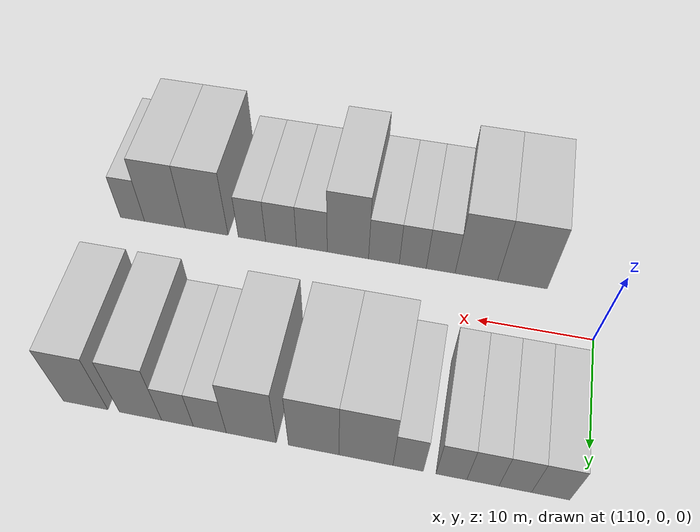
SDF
<sdf version="1.6">
 <world name="default">
  <model name="building_25">
   <static>1</static>
   <pose>112.8663 9.5000 0 0.000000 0.000000 1.570796</pose>
   <link name="link">
    <pose>0 0 3.00 0 0 0</pose>
    <collision name="collision"><geometry><box><size>10.0000 2.9402 6.0000</size></box></geometry></collision>
    <visual name="visual">
     <cast_shadows>0</cast_shadows>
     <geometry><box><size>10.0000 2.9402 6.0000</size></box></geometry>
     <material>
      <script>
       <uri>model://HANNAS_wall/materials/scripts</uri>
       <uri>model://HANNAS_wall/materials/textures</uri>
       <name>vrc/HANNAS_wall</name>
      </script>
     </material>
    </visual>
   </link>
  </model>
  <model name="building_26">
   <static>1</static>
   <pose>115.5956 9.5000 0 0.000000 0.000000 1.570796</pose>
   <link name="link">
    <pose>0 0 3.00 0 0 0</pose>
    <collision name="collision"><geometry><box><size>10.0000 2.5184 6.0000</size></box></geometry></collision>
    <visual name="visual">
     <cast_shadows>0</cast_shadows>
     <geometry><box><size>10.0000 2.5184 6.0000</size></box></geometry>
     <material>
      <script>
       <uri>model://HANNAS_wall/materials/scripts</uri>
       <uri>model://HANNAS_wall/materials/textures</uri>
       <name>vrc/HANNAS_wall</name>
      </script>
     </material>
    </visual>
   </link>
  </model>
  <model name="building_27">
   <static>1</static>
   <pose>118.1080 9.5000 0 0.000000 0.000000 1.570796</pose>
   <link name="link">
    <pose>0 0 3.00 0 0 0</pose>
    <collision name="collision"><geometry><box><size>10.0000 2.5065 6.0000</size></box></geometry></collision>
    <visual name="visual">
     <cast_shadows>0</cast_shadows>
     <geometry><box><size>10.0000 2.5065 6.0000</size></box></geometry>
     <material>
      <script>
       <uri>model://HANNAS_wall/materials/scripts</uri>
       <uri>model://HANNAS_wall/materials/textures</uri>
       <name>vrc/HANNAS_wall</name>
      </script>
     </material>
    </visual>
   </link>
  </model>
  <model name="building_28">
   <static>1</static>
   <pose>120.5743 9.5000 0 0.000000 0.000000 1.570796</pose>
   <link name="link">
    <pose>0 0 3.00 0 0 0</pose>
    <collision name="collision"><geometry><box><size>10.0000 2.4260 6.0000</size></box></geometry></collision>
    <visual name="visual">
     <cast_shadows>0</cast_shadows>
     <geometry><box><size>10.0000 2.4260 6.0000</size></box></geometry>
     <material>
      <script>
       <uri>model://HANNAS_wall/materials/scripts</uri>
       <uri>model://HANNAS_wall/materials/textures</uri>
       <name>vrc/HANNAS_wall</name>
      </script>
     </material>
    </visual>
   </link>
  </model>
  <model name="building_29">
   <static>1</static>
   <pose>123.9960 9.5000 0 0.000000 0.000000 1.570796</pose>
   <link name="link">
    <pose>0 0 3.00 0 0 0</pose>
    <collision name="collision"><geometry><box><size>10.0000 2.4174 6.0000</size></box></geometry></collision>
    <visual name="visual">
     <cast_shadows>0</cast_shadows>
     <geometry><box><size>10.0000 2.4174 6.0000</size></box></geometry>
     <material>
      <script>
       <uri>model://HANNAS_wall/materials/scripts</uri>
       <uri>model://HANNAS_wall/materials/textures</uri>
       <name>vrc/HANNAS_wall</name>
      </script>
     </material>
    </visual>
   </link>
  </model>
  <model name="building_30">
   <static>1</static>
   <pose>127.3766 9.5000 0 0.000000 0.000000 1.570796</pose>
   <link name="link">
    <pose>0 0 4.50 0 0 0</pose>
    <collision name="collision"><geometry><box><size>10.0000 4.3437 9.0000</size></box></geometry></collision>
    <visual name="visual">
     <cast_shadows>0</cast_shadows>
     <geometry><box><size>10.0000 4.3437 9.0000</size></box></geometry>
     <material>
      <script>
       <uri>model://HANNAS_wall/materials/scripts</uri>
       <uri>model://HANNAS_wall/materials/textures</uri>
       <name>vrc/HANNAS_wall</name>
      </script>
     </material>
    </visual>
   </link>
  </model>
  <model name="building_31">
   <static>1</static>
   <pose>131.6081 9.5000 0 0.000000 0.000000 1.570796</pose>
   <link name="link">
    <pose>0 0 4.50 0 0 0</pose>
    <collision name="collision"><geometry><box><size>10.0000 4.1194 9.0000</size></box></geometry></collision>
    <visual name="visual">
     <cast_shadows>0</cast_shadows>
     <geometry><box><size>10.0000 4.1194 9.0000</size></box></geometry>
     <material>
      <script>
       <uri>model://HANNAS_wall/materials/scripts</uri>
       <uri>model://HANNAS_wall/materials/textures</uri>
       <name>vrc/HANNAS_wall</name>
      </script>
     </material>
    </visual>
   </link>
  </model>
  <model name="building_32">
   <static>1</static>
   <pose>136.7439 9.5000 0 0.000000 0.000000 1.570796</pose>
   <link name="link">
    <pose>0 0 4.50 0 0 0</pose>
    <collision name="collision"><geometry><box><size>10.0000 4.1521 9.0000</size></box></geometry></collision>
    <visual name="visual">
     <cast_shadows>0</cast_shadows>
     <geometry><box><size>10.0000 4.1521 9.0000</size></box></geometry>
     <material>
      <script>
       <uri>model://HANNAS_wall/materials/scripts</uri>
       <uri>model://HANNAS_wall/materials/textures</uri>
       <name>vrc/HANNAS_wall</name>
      </script>
     </material>
    </visual>
   </link>
  </model>
  <model name="building_33">
   <static>1</static>
   <pose>140.2035 9.5000 0 0.000000 0.000000 1.570796</pose>
   <link name="link">
    <pose>0 0 3.00 0 0 0</pose>
    <collision name="collision"><geometry><box><size>10.0000 2.7670 6.0000</size></box></geometry></collision>
    <visual name="visual">
     <cast_shadows>0</cast_shadows>
     <geometry><box><size>10.0000 2.7670 6.0000</size></box></geometry>
     <material>
      <script>
       <uri>model://HANNAS_wall/materials/scripts</uri>
       <uri>model://HANNAS_wall/materials/textures</uri>
       <name>vrc/HANNAS_wall</name>
      </script>
     </material>
    </visual>
   </link>
  </model>
  <model name="building_34">
   <static>1</static>
   <pose>142.9331 9.5000 0 0.000000 0.000000 1.570796</pose>
   <link name="link">
    <pose>0 0 3.00 0 0 0</pose>
    <collision name="collision"><geometry><box><size>10.0000 2.6923 6.0000</size></box></geometry></collision>
    <visual name="visual">
     <cast_shadows>0</cast_shadows>
     <geometry><box><size>10.0000 2.6923 6.0000</size></box></geometry>
     <material>
      <script>
       <uri>model://HANNAS_wall/materials/scripts</uri>
       <uri>model://HANNAS_wall/materials/textures</uri>
       <name>vrc/HANNAS_wall</name>
      </script>
     </material>
    </visual>
   </link>
  </model>
  <model name="building_35">
   <static>1</static>
   <pose>146.0884 9.5000 0 0.000000 0.000000 1.570796</pose>
   <link name="link">
    <pose>0 0 4.50 0 0 0</pose>
    <collision name="collision"><geometry><box><size>10.0000 3.6184 9.0000</size></box></geometry></collision>
    <visual name="visual">
     <cast_shadows>0</cast_shadows>
     <geometry><box><size>10.0000 3.6184 9.0000</size></box></geometry>
     <material>
      <script>
       <uri>model://HANNAS_wall/materials/scripts</uri>
       <uri>model://HANNAS_wall/materials/textures</uri>
       <name>vrc/HANNAS_wall</name>
      </script>
     </material>
    </visual>
   </link>
  </model>
  <model name="building_36">
   <static>1</static>
   <pose>150.8325 9.5000 0 0.000000 0.000000 1.570796</pose>
   <link name="link">
    <pose>0 0 4.50 0 0 0</pose>
    <collision name="collision"><geometry><box><size>10.0000 3.8698 9.0000</size></box></geometry></collision>
    <visual name="visual">
     <cast_shadows>0</cast_shadows>
     <geometry><box><size>10.0000 3.8698 9.0000</size></box></geometry>
     <material>
      <script>
       <uri>model://HANNAS_wall/materials/scripts</uri>
       <uri>model://HANNAS_wall/materials/textures</uri>
       <name>vrc/HANNAS_wall</name>
      </script>
     </material>
    </visual>
   </link>
  </model>
  <model name="building_74">
   <static>1</static>
   <pose>116.4520 -9.5000 0 0.000000 0.000000 1.570796</pose>
   <link name="link">
    <pose>0 0 4.50 0 0 0</pose>
    <collision name="collision"><geometry><box><size>10.0000 4.4713 9.0000</size></box></geometry></collision>
    <visual name="visual">
     <cast_shadows>0</cast_shadows>
     <geometry><box><size>10.0000 4.4713 9.0000</size></box></geometry>
     <material>
      <script>
       <uri>model://HANNAS_wall/materials/scripts</uri>
       <uri>model://HANNAS_wall/materials/textures</uri>
       <name>vrc/HANNAS_wall</name>
      </script>
     </material>
    </visual>
   </link>
  </model>
  <model name="building_75">
   <static>1</static>
   <pose>120.6215 -9.5000 0 0.000000 0.000000 1.570796</pose>
   <link name="link">
    <pose>0 0 4.50 0 0 0</pose>
    <collision name="collision"><geometry><box><size>10.0000 3.8678 9.0000</size></box></geometry></collision>
    <visual name="visual">
     <cast_shadows>0</cast_shadows>
     <geometry><box><size>10.0000 3.8678 9.0000</size></box></geometry>
     <material>
      <script>
       <uri>model://HANNAS_wall/materials/scripts</uri>
       <uri>model://HANNAS_wall/materials/textures</uri>
       <name>vrc/HANNAS_wall</name>
      </script>
     </material>
    </visual>
   </link>
  </model>
  <model name="building_76">
   <static>1</static>
   <pose>123.8800 -9.5000 0 0.000000 0.000000 1.570796</pose>
   <link name="link">
    <pose>0 0 3.00 0 0 0</pose>
    <collision name="collision"><geometry><box><size>10.0000 2.6493 6.0000</size></box></geometry></collision>
    <visual name="visual">
     <cast_shadows>0</cast_shadows>
     <geometry><box><size>10.0000 2.6493 6.0000</size></box></geometry>
     <material>
      <script>
       <uri>model://HANNAS_wall/materials/scripts</uri>
       <uri>model://HANNAS_wall/materials/textures</uri>
       <name>vrc/HANNAS_wall</name>
      </script>
     </material>
    </visual>
   </link>
  </model>
  <model name="building_77">
   <static>1</static>
   <pose>126.4538 -9.5000 0 0.000000 0.000000 1.570796</pose>
   <link name="link">
    <pose>0 0 3.00 0 0 0</pose>
    <collision name="collision"><geometry><box><size>10.0000 2.4983 6.0000</size></box></geometry></collision>
    <visual name="visual">
     <cast_shadows>0</cast_shadows>
     <geometry><box><size>10.0000 2.4983 6.0000</size></box></geometry>
     <material>
      <script>
       <uri>model://HANNAS_wall/materials/scripts</uri>
       <uri>model://HANNAS_wall/materials/textures</uri>
       <name>vrc/HANNAS_wall</name>
      </script>
     </material>
    </visual>
   </link>
  </model>
  <model name="building_78">
   <static>1</static>
   <pose>129.1369 -9.5000 0 0.000000 0.000000 1.570796</pose>
   <link name="link">
    <pose>0 0 3.00 0 0 0</pose>
    <collision name="collision"><geometry><box><size>10.0000 2.8678 6.0000</size></box></geometry></collision>
    <visual name="visual">
     <cast_shadows>0</cast_shadows>
     <geometry><box><size>10.0000 2.8678 6.0000</size></box></geometry>
     <material>
      <script>
       <uri>model://HANNAS_wall/materials/scripts</uri>
       <uri>model://HANNAS_wall/materials/textures</uri>
       <name>vrc/HANNAS_wall</name>
      </script>
     </material>
    </visual>
   </link>
  </model>
  <model name="building_79">
   <static>1</static>
   <pose>132.5157 -9.5000 0 0.000000 0.000000 1.570796</pose>
   <link name="link">
    <pose>0 0 4.50 0 0 0</pose>
    <collision name="collision"><geometry><box><size>10.0000 3.8898 9.0000</size></box></geometry></collision>
    <visual name="visual">
     <cast_shadows>0</cast_shadows>
     <geometry><box><size>10.0000 3.8898 9.0000</size></box></geometry>
     <material>
      <script>
       <uri>model://HANNAS_wall/materials/scripts</uri>
       <uri>model://HANNAS_wall/materials/textures</uri>
       <name>vrc/HANNAS_wall</name>
      </script>
     </material>
    </visual>
   </link>
  </model>
  <model name="building_80">
   <static>1</static>
   <pose>135.9223 -9.5000 0 0.000000 0.000000 1.570796</pose>
   <link name="link">
    <pose>0 0 3.00 0 0 0</pose>
    <collision name="collision"><geometry><box><size>10.0000 2.9233 6.0000</size></box></geometry></collision>
    <visual name="visual">
     <cast_shadows>0</cast_shadows>
     <geometry><box><size>10.0000 2.9233 6.0000</size></box></geometry>
     <material>
      <script>
       <uri>model://HANNAS_wall/materials/scripts</uri>
       <uri>model://HANNAS_wall/materials/textures</uri>
       <name>vrc/HANNAS_wall</name>
      </script>
     </material>
    </visual>
   </link>
  </model>
  <model name="building_81">
   <static>1</static>
   <pose>138.8621 -9.5000 0 0.000000 0.000000 1.570796</pose>
   <link name="link">
    <pose>0 0 3.00 0 0 0</pose>
    <collision name="collision"><geometry><box><size>10.0000 2.9564 6.0000</size></box></geometry></collision>
    <visual name="visual">
     <cast_shadows>0</cast_shadows>
     <geometry><box><size>10.0000 2.9564 6.0000</size></box></geometry>
     <material>
      <script>
       <uri>model://HANNAS_wall/materials/scripts</uri>
       <uri>model://HANNAS_wall/materials/textures</uri>
       <name>vrc/HANNAS_wall</name>
      </script>
     </material>
    </visual>
   </link>
  </model>
  <model name="building_82">
   <static>1</static>
   <pose>141.6635 -9.5000 0 0.000000 0.000000 1.570796</pose>
   <link name="link">
    <pose>0 0 3.00 0 0 0</pose>
    <collision name="collision"><geometry><box><size>10.0000 2.6464 6.0000</size></box></geometry></collision>
    <visual name="visual">
     <cast_shadows>0</cast_shadows>
     <geometry><box><size>10.0000 2.6464 6.0000</size></box></geometry>
     <material>
      <script>
       <uri>model://HANNAS_wall/materials/scripts</uri>
       <uri>model://HANNAS_wall/materials/textures</uri>
       <name>vrc/HANNAS_wall</name>
      </script>
     </material>
    </visual>
   </link>
  </model>
  <model name="building_83">
   <static>1</static>
   <pose>146.0692 -9.5000 0 0.000000 0.000000 1.570796</pose>
   <link name="link">
    <pose>0 0 4.50 0 0 0</pose>
    <collision name="collision"><geometry><box><size>10.0000 4.1650 9.0000</size></box></geometry></collision>
    <visual name="visual">
     <cast_shadows>0</cast_shadows>
     <geometry><box><size>10.0000 4.1650 9.0000</size></box></geometry>
     <material>
      <script>
       <uri>model://HANNAS_wall/materials/scripts</uri>
       <uri>model://HANNAS_wall/materials/textures</uri>
       <name>vrc/HANNAS_wall</name>
      </script>
     </material>
    </visual>
   </link>
  </model>
  <model name="building_84">
   <static>1</static>
   <pose>150.1838 -9.5000 0 0.000000 0.000000 1.570796</pose>
   <link name="link">
    <pose>0 0 4.50 0 0 0</pose>
    <collision name="collision"><geometry><box><size>10.0000 4.0643 9.0000</size></box></geometry></collision>
    <visual name="visual">
     <cast_shadows>0</cast_shadows>
     <geometry><box><size>10.0000 4.0643 9.0000</size></box></geometry>
     <material>
      <script>
       <uri>model://HANNAS_wall/materials/scripts</uri>
       <uri>model://HANNAS_wall/materials/textures</uri>
       <name>vrc/HANNAS_wall</name>
      </script>
     </material>
    </visual>
   </link>
  </model>
  <model name="building_85">
   <static>1</static>
   <pose>153.4200 -9.5000 0 0.000000 0.000000 1.570796</pose>
   <link name="link">
    <pose>0 0 3.00 0 0 0</pose>
    <collision name="collision"><geometry><box><size>10.0000 2.4080 6.0000</size></box></geometry></collision>
    <visual name="visual">
     <cast_shadows>0</cast_shadows>
     <geometry><box><size>10.0000 2.4080 6.0000</size></box></geometry>
     <material>
      <script>
       <uri>model://HANNAS_wall/materials/scripts</uri>
       <uri>model://HANNAS_wall/materials/textures</uri>
       <name>vrc/HANNAS_wall</name>
      </script>
     </material>
    </visual>
   </link>
  </model>
 </world>
</sdf>
